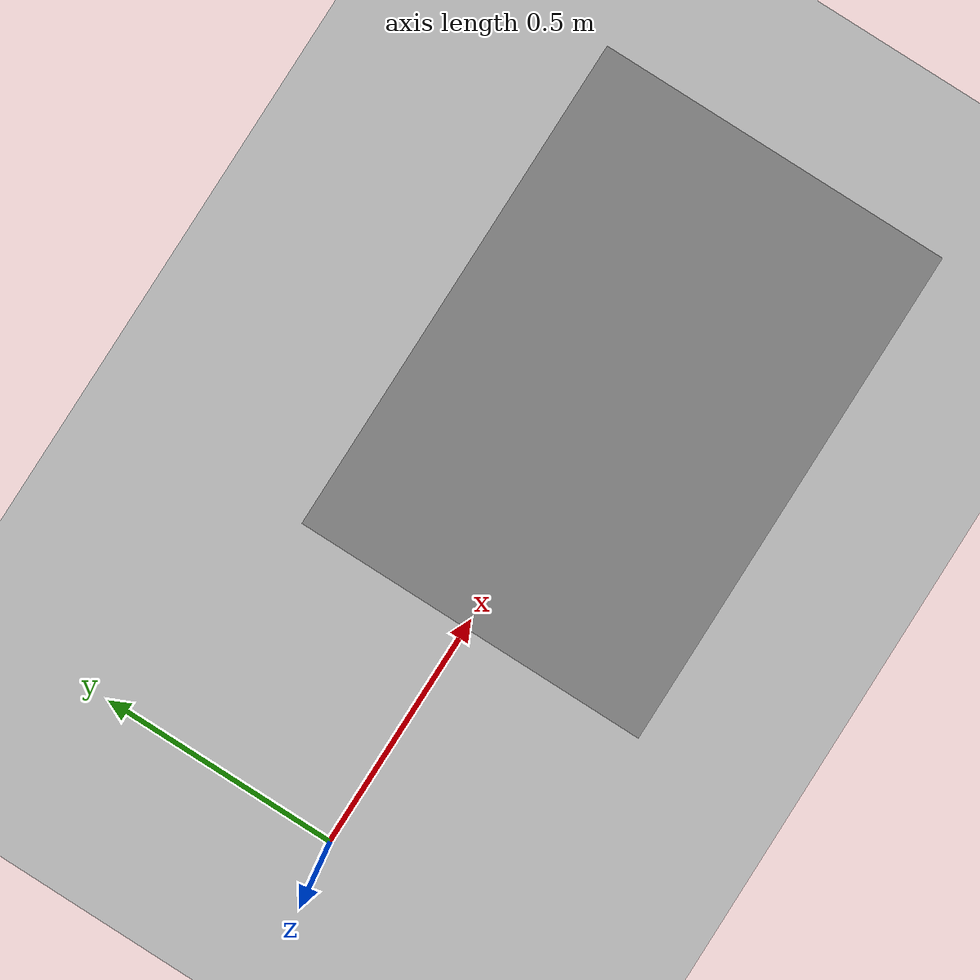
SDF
<?xml version="1.0" ?>
<sdf version="1.5">
    <world name="default">

        <physics type="ode">
            <max_step_size>0.0005</max_step_size>
            <real_time_factor>1</real_time_factor>
            <real_time_update_rate>2000</real_time_update_rate>
            <gravity>0 0 -9.81</gravity>
            <ode>
                <solver>
                    <type>quick</type>
                    <iters>50</iters>
                    <sor>1.3</sor>
                </solver>
                <constraints>
                    <cfm>0.0</cfm>
                    <erp>0.2</erp>
                    <contact_max_correcting_vel>10.0</contact_max_correcting_vel>
                    <contact_surface_layer>0.001</contact_surface_layer>
                </constraints>
            </ode>
        </physics>

        <scene>
        <sky>
            <clouds>
                <speed>12</speed>
            </clouds>
        </sky>
        </scene>
        <!-- A global light source -->
        <include>
            <uri>model://sun</uri>
        </include>
        <!-- A ground plane -->
        <include>
            <uri>model://ground_plane</uri>
        </include>

        <!-- Larger climb platform.
             Robot spawns at x=0 facing +x; the near edge is 0.5 m ahead. -->
        <model name="suitcase_platform">
            <static>true</static>
            <pose>1.0 0 0.125 0 0 0</pose>
            <link name="platform_link">
                <collision name="platform_collision">
                    <geometry>
                        <box>
                            <size>1.0 0.7 0.25</size>
                        </box>
                    </geometry>
                    <surface>
                        <friction>
                            <ode>
                                <mu>1.0</mu>
                                <mu2>1.0</mu2>
                            </ode>
                        </friction>
                    </surface>
                </collision>
                <visual name="platform_visual">
                    <geometry>
                        <box>
                            <size>1.0 0.7 0.25</size>
                        </box>
                    </geometry>
                    <material>
                        <ambient>0.45 0.45 0.45 1</ambient>
                        <diffuse>0.55 0.55 0.55 1</diffuse>
                    </material>
                </visual>
            </link>
        </model>

    </world>
</sdf>
